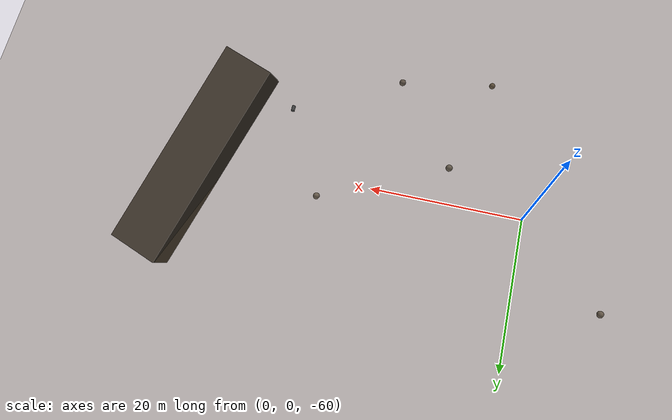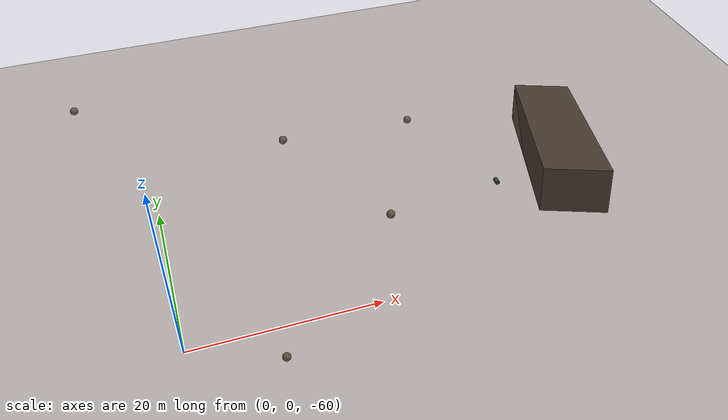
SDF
<?xml version="1.0"?>
<sdf version="1.6">
  <world name="underwater_minefield">

    <physics name="default_physics" default="true" type="ode">
      <max_step_size>0.001</max_step_size>
      <real_time_factor>1.0</real_time_factor>
      <real_time_update_rate>1000</real_time_update_rate>
    </physics>

    <gravity>0 0 -9.81</gravity>

    <scene>
      <ambient>0.05 0.12 0.18 1.0</ambient>
      <background>0.02 0.08 0.14 1.0</background>
      <fog>
        <color>0.04 0.12 0.18 1.0</color>
        <type>exp2</type>
        <density>0.06</density>
        <start>1.0</start>
        <end>30.0</end>
      </fog>
      <shadows>false</shadows>
    </scene>

    <light name="ambient_glow" type="directional">
      <cast_shadows>false</cast_shadows>
      <pose>0 0 10 0 0.3 0</pose>
      <diffuse>0.08 0.20 0.30 1</diffuse>
      <specular>0.02 0.05 0.08 1</specular>
      <direction>0.1 0.1 -1.0</direction>
    </light>

    <model name="seafloor">
      <static>true</static>
      <pose>0 0 -50 0 0 0</pose>
      <link name="seafloor_link">
        <collision name="seafloor_collision">
          <geometry>
            <plane><normal>0 0 1</normal><size>500 500</size></plane>
          </geometry>
        </collision>
        <visual name="seafloor_visual">
          <geometry>
            <plane><normal>0 0 1</normal><size>500 500</size></plane>
          </geometry>
          <material>
            <ambient>0.30 0.26 0.18 1</ambient>
            <diffuse>0.35 0.28 0.19 1</diffuse>
          </material>
        </visual>
      </link>
    </model>

    <model name="mine_01">
      <static>true</static>
      <pose>12.0 3.5 -40.0 0 0 0</pose>
      <link name="mine_body">
        <collision name="col"><geometry><sphere><radius>0.35</radius></sphere></geometry></collision>
        <visual name="vis">
          <geometry><sphere><radius>0.35</radius></sphere></geometry>
          <material><ambient>0.25 0.22 0.20 1</ambient><diffuse>0.40 0.36 0.30 1</diffuse><specular>0.80 0.78 0.72 1</specular></material>
        </visual>
      </link>
    </model>

    <model name="mine_02">
      <static>true</static>
      <pose>18.5 -6.2 -42.0 0 0 0.78</pose>
      <link name="mine_body">
        <collision name="col"><geometry><sphere><radius>0.35</radius></sphere></geometry></collision>
        <visual name="vis">
          <geometry><sphere><radius>0.35</radius></sphere></geometry>
          <material><ambient>0.22 0.20 0.18 1</ambient><diffuse>0.38 0.33 0.28 1</diffuse></material>
        </visual>
      </link>
    </model>

    <model name="mine_03">
      <static>true</static>
      <pose>25.0 8.0 -44.0 0 0 1.2</pose>
      <link name="mine_body">
        <collision name="col"><geometry><sphere><radius>0.35</radius></sphere></geometry></collision>
        <visual name="vis">
          <geometry><sphere><radius>0.35</radius></sphere></geometry>
          <material><ambient>0.28 0.24 0.20 1</ambient><diffuse>0.42 0.37 0.31 1</diffuse></material>
        </visual>
      </link>
    </model>

    <model name="mine_04">
      <static>true</static>
      <pose>30.0 -2.0 -45.0 1.57 0 0</pose>
      <link name="mine_body">
        <collision name="col"><geometry><cylinder><radius>0.20</radius><length>0.60</length></cylinder></geometry></collision>
        <visual name="vis">
          <geometry><cylinder><radius>0.20</radius><length>0.60</length></cylinder></geometry>
          <material><ambient>0.15 0.15 0.15 1</ambient><diffuse>0.25 0.25 0.25 1</diffuse><specular>0.90 0.90 0.88 1</specular></material>
        </visual>
      </link>
    </model>

    <model name="mine_05">
      <static>true</static>
      <pose>-5.0 15.0 -41.0 0 0 0</pose>
      <link name="mine_body">
        <collision name="col"><geometry><sphere><radius>0.35</radius></sphere></geometry></collision>
        <visual name="vis">
          <geometry><sphere><radius>0.35</radius></sphere></geometry>
          <material><ambient>0.26 0.23 0.19 1</ambient><diffuse>0.40 0.35 0.29 1</diffuse></material>
        </visual>
      </link>
    </model>

    <model name="mine_06">
      <static>true</static>
      <pose>8.0 -12.0 -49.0 0 0 0</pose>
      <link name="mine_body">
        <collision name="col"><geometry><sphere><radius>0.35</radius></sphere></geometry></collision>
        <visual name="vis">
          <geometry><sphere><radius>0.35</radius></sphere></geometry>
          <material><ambient>0.32 0.28 0.22 1</ambient><diffuse>0.38 0.32 0.24 1</diffuse></material>
        </visual>
      </link>
    </model>

    <model name="shipwreck_hull">
      <static>true</static>
      <pose>40.0 5.0 -48.0 0 0.3 1.2</pose>
      <link name="hull_link">
        <collision name="col"><geometry><box><size>25.0 6.0 4.0</size></box></geometry></collision>
        <visual name="vis">
          <geometry><box><size>25.0 6.0 4.0</size></box></geometry>
          <material><ambient>0.20 0.18 0.15 1</ambient><diffuse>0.28 0.24 0.20 1</diffuse></material>
        </visual>
      </link>
    </model>

  </world>
</sdf>
